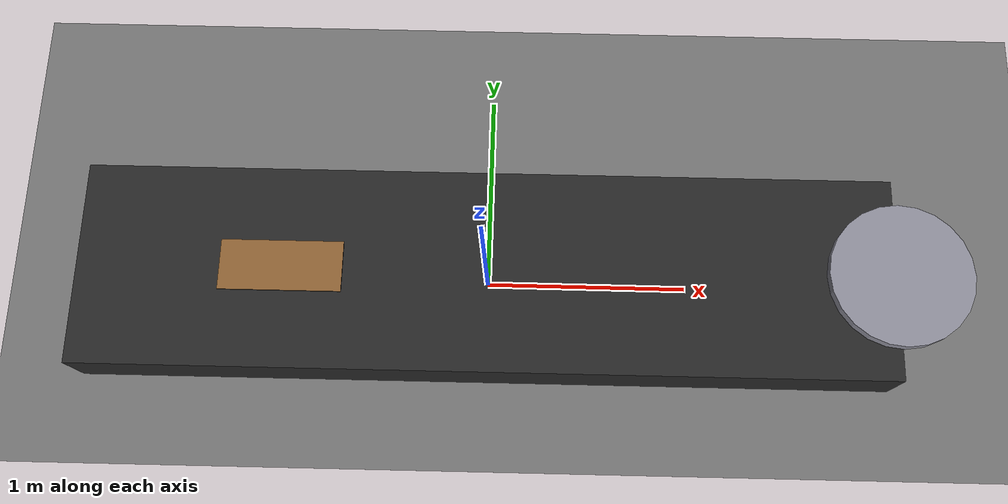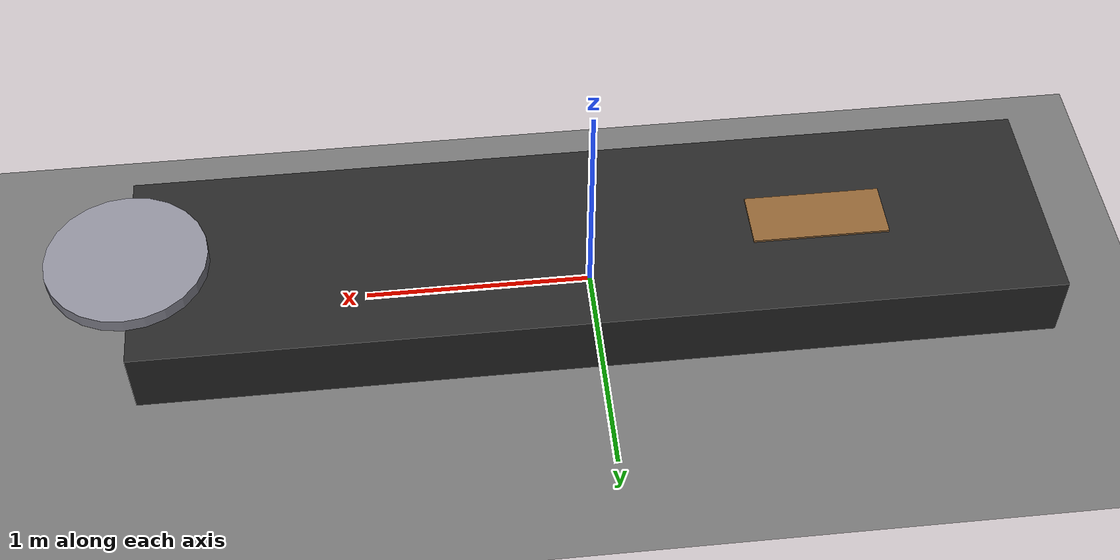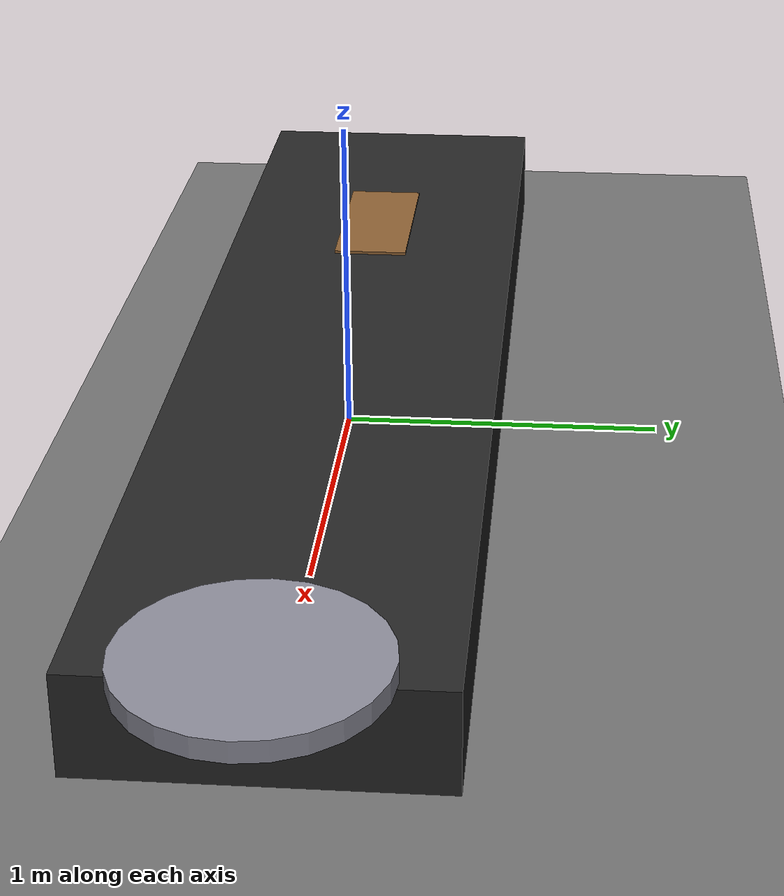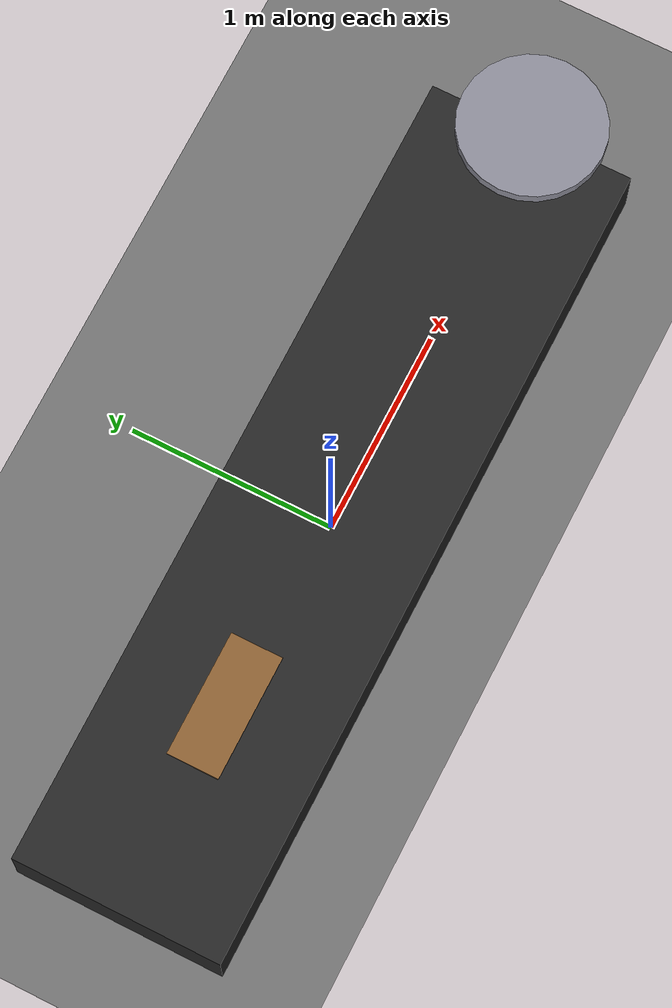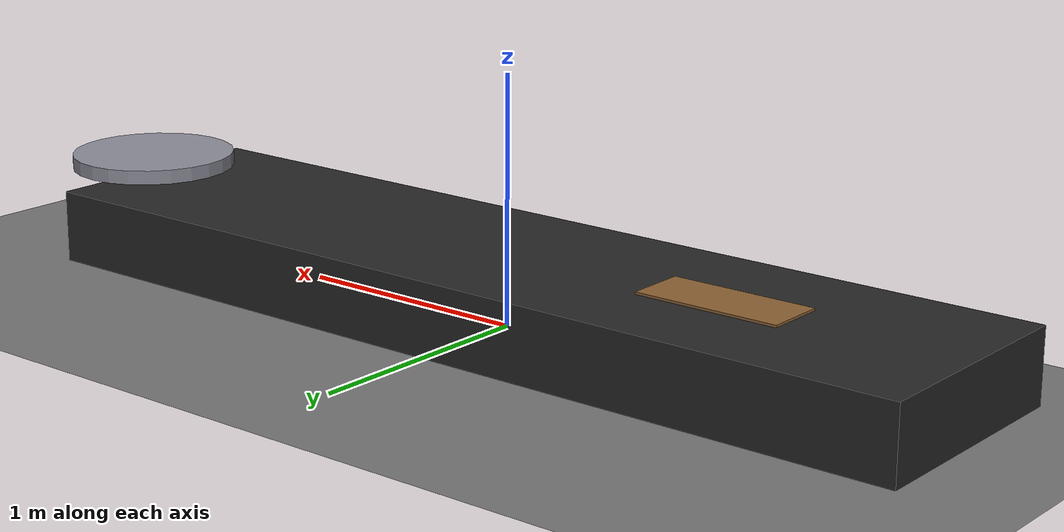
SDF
<?xml version="1.0" ?>
<sdf version="1.7">
  <world name="axisai">

    <!-- Cena / iluminação ambiente (ajuda muito o viewer não ficar "cinza") -->
    <scene>
      <ambient>0.6 0.6 0.6 1</ambient>
      <background>0.85 0.90 0.95 1</background>
      <shadows>true</shadows>
    </scene>

    <!-- Luz direcional simples (sem depender de model://sun) -->
    <light name="sun" type="directional">
      <cast_shadows>true</cast_shadows>
      <pose>0 0 10 0 0 0</pose>
      <direction>-0.5 -0.2 -1</direction>
      <diffuse>1 1 1 1</diffuse>
      <specular>0.2 0.2 0.2 1</specular>
    </light>

    <!-- Chão simples (sem depender de model://ground_plane) -->
    <model name="ground_plane">
      <static>true</static>
      <pose>0 0 0 0 0 0</pose>
      <link name="link">
        <collision name="collision">
          <geometry>
            <plane>
              <normal>0 0 1</normal>
              <size>200 200</size>
            </plane>
          </geometry>
        </collision>

        <!-- visual com material pra não "sumir" -->
        <visual name="visual">
          <geometry>
            <plane>
              <normal>0 0 1</normal>
              <size>200 200</size>
            </plane>
          </geometry>
          <material>
            <ambient>0.25 0.25 0.25 1</ambient>
            <diffuse>0.45 0.45 0.45 1</diffuse>
            <specular>0.05 0.05 0.05 1</specular>
          </material>
        </visual>
      </link>
    </model>

    <!-- Conveyor (placeholder) -->
    <model name="conveyor">
      <static>true</static>
      <pose>0 0 0.15 0 0 0</pose>
      <link name="link">
        <collision name="collision">
          <geometry>
            <box><size>4 1 0.3</size></box>
          </geometry>
        </collision>
        <visual name="visual">
          <geometry>
            <box><size>4 1 0.3</size></box>
          </geometry>
          <material>
            <ambient>0.10 0.10 0.10 1</ambient>
            <diffuse>0.15 0.15 0.15 1</diffuse>
          </material>
        </visual>
      </link>
    </model>

    <!-- Saw (placeholder) -->
    <model name="saw">
      <static>true</static>
      <pose>2 0 0.35 0 0 0</pose>
      <link name="link">
        <collision name="collision">
          <geometry>
            <cylinder>
              <radius>0.35</radius>
              <length>0.06</length>
            </cylinder>
          </geometry>
        </collision>
        <visual name="visual">
          <geometry>
            <cylinder>
              <radius>0.35</radius>
              <length>0.06</length>
            </cylinder>
          </geometry>
          <material>
            <ambient>0.20 0.20 0.22 1</ambient>
            <diffuse>0.55 0.55 0.60 1</diffuse>
            <specular>0.25 0.25 0.25 1</specular>
          </material>
        </visual>
      </link>
    </model>

    <!-- Wood piece (placeholder) -->
    <model name="wood_piece_1">
      <static>true</static>
      <pose>-1 0 0.25 0 0 0</pose>
      <link name="link">
        <collision name="collision">
          <geometry>
            <box><size>0.6 0.25 0.12</size></box>
          </geometry>
        </collision>
        <visual name="visual">
          <geometry>
            <box><size>0.6 0.25 0.12</size></box>
          </geometry>
          <material>
            <ambient>0.25 0.18 0.10 1</ambient>
            <diffuse>0.55 0.38 0.20 1</diffuse>
            <specular>0.05 0.05 0.05 1</specular>
          </material>
        </visual>
      </link>
    </model>

    <!-- Websocket server p/ conectar o app.gazebosim.org -->
    <plugin
      filename="libgz-sim-websocket-server-system.so"
      name="gz::sim::systems::WebsocketServer">
      <port>9002</port>
    </plugin>

  </world>
</sdf>
